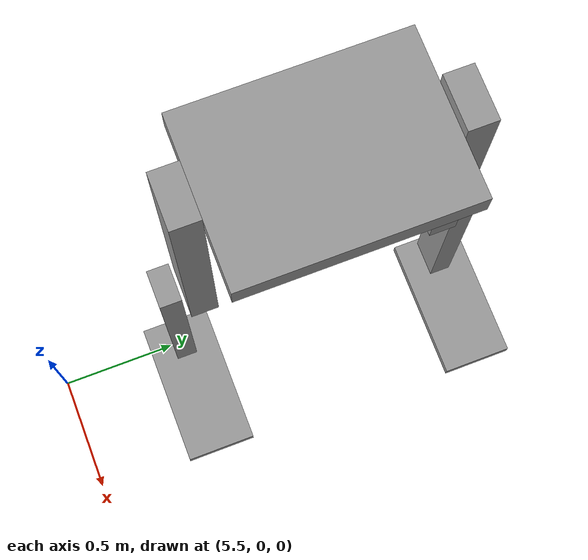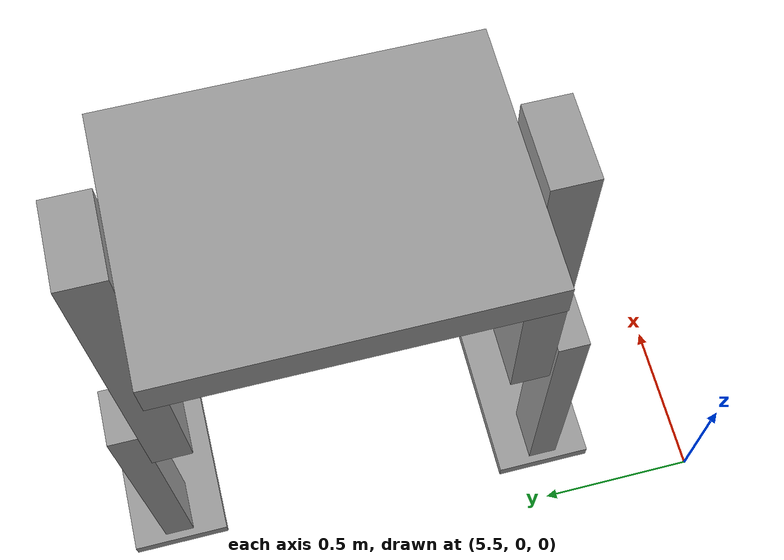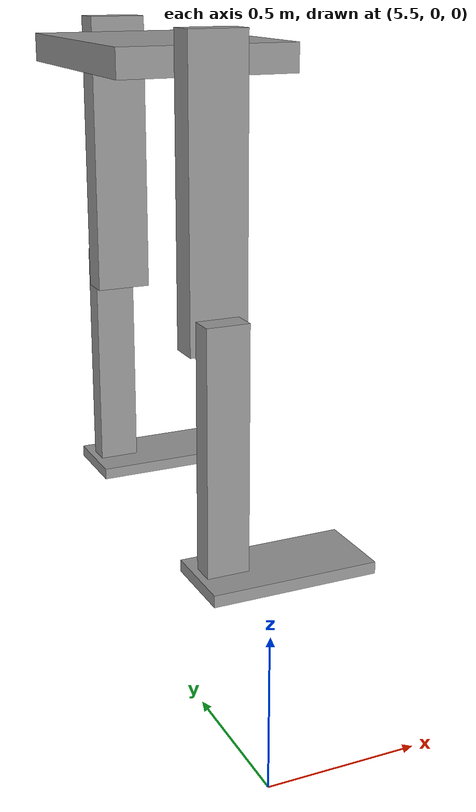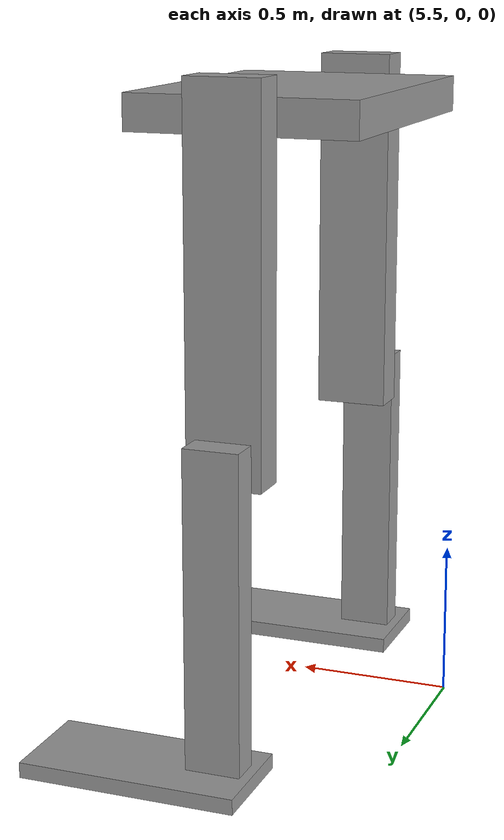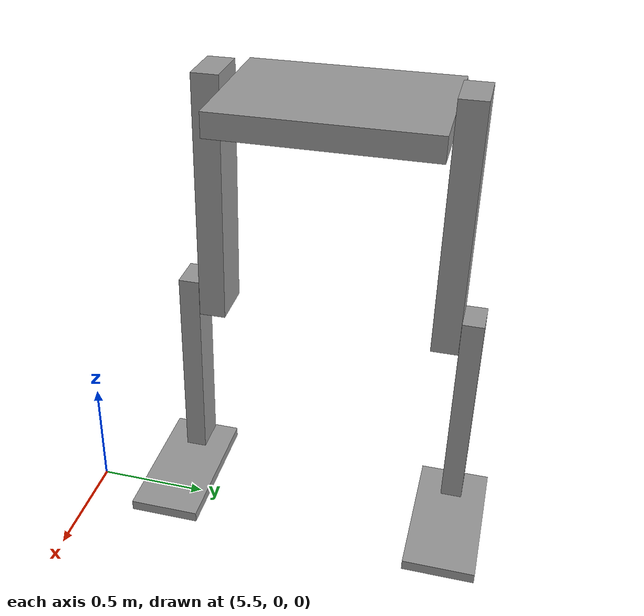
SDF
<?xml version='1.0'?>
<sdf version='1.6'>
  <model name='HumanoidRobot'>
    <link name='link_0'>
      <pose frame=''>5.63291 1.13301 2.06171 0 -0 0</pose>
      <inertial>
        <mass>0.0479159</mass>
        <inertia>
          <ixx>0.00277622</ixx>
          <ixy>0</ixy>
          <ixz>0</ixz>
          <iyy>0.00151083</iyy>
          <iyz>0</iyz>
          <izz>0.00421471</izz>
        </inertia>
        <pose frame=''>0 0 0 0 -0 0</pose>
      </inertial>
      <visual name='visual'>
        <pose frame=''>0 0 0 0 -0 0</pose>
        <geometry>
          <box>
            <size>0.60771 0.828381 0.095171</size>
          </box>
        </geometry>
        <material>
          <lighting>1</lighting>
          <script>
            <uri>file://media/materials/scripts/gazebo.material</uri>
            <name>Gazebo/Grey</name>
          </script>
          <shader type='pixel'/>
          <ambient>0.3 0.3 0.3 1</ambient>
          <diffuse>0.7 0.7 0.7 1</diffuse>
          <specular>0.01 0.01 0.01 1</specular>
          <emissive>0 0 0 1</emissive>
        </material>
        <transparency>0</transparency>
        <cast_shadows>1</cast_shadows>
      </visual>
      <collision name='collision'>
        <laser_retro>0</laser_retro>
        <max_contacts>10</max_contacts>
        <pose frame=''>0 0 0 0 -0 0</pose>
        <geometry>
          <box>
            <size>0.60771 0.828381 0.095171</size>
          </box>
        </geometry>
        <surface>
          <friction>
            <ode>
              <mu>1</mu>
              <mu2>1</mu2>
              <fdir1>0 0 0</fdir1>
              <slip1>0</slip1>
              <slip2>0</slip2>
            </ode>
            <torsional>
              <coefficient>1</coefficient>
              <patch_radius>0</patch_radius>
              <surface_radius>0</surface_radius>
              <use_patch_radius>1</use_patch_radius>
              <ode>
                <slip>0</slip>
              </ode>
            </torsional>
          </friction>
          <bounce>
            <restitution_coefficient>0</restitution_coefficient>
            <threshold>1e+06</threshold>
          </bounce>
          <contact>
            <collide_without_contact>0</collide_without_contact>
            <collide_without_contact_bitmask>1</collide_without_contact_bitmask>
            <collide_bitmask>1</collide_bitmask>
            <ode>
              <soft_cfm>0</soft_cfm>
              <soft_erp>0.2</soft_erp>
              <kp>1e+13</kp>
              <kd>1</kd>
              <max_vel>0.01</max_vel>
              <min_depth>0</min_depth>
            </ode>
            <bullet>
              <split_impulse>1</split_impulse>
              <split_impulse_penetration_threshold>-0.01</split_impulse_penetration_threshold>
              <soft_cfm>0</soft_cfm>
              <soft_erp>0.2</soft_erp>
              <kp>1e+13</kp>
              <kd>1</kd>
            </bullet>
          </contact>
        </surface>
      </collision>
    </link>
    <link name='link_1'>
      <pose frame=''>5.61249 0.663008 1.66171 0 -0 0</pose>
      <inertial>
        <mass>0.0209671</mass>
        <inertia>
          <ixx>0.00176679</ixx>
          <ixy>0</ixy>
          <ixz>0</ixz>
          <iyy>0.00181598</iyy>
          <iyz>0</iyz>
          <izz>8.82536e-05</izz>
        </inertia>
        <pose frame=''>0 0 0 0 -0 0</pose>
      </inertial>
      <visual name='visual'>
        <pose frame=''>0 0 0 0 -0 0</pose>
        <geometry>
          <box>
            <size>0.198326 0.105721 1</size>
          </box>
        </geometry>
        <material>
          <lighting>1</lighting>
          <script>
            <uri>file://media/materials/scripts/gazebo.material</uri>
            <name>Gazebo/Grey</name>
          </script>
          <shader type='pixel'/>
          <ambient>0.3 0.3 0.3 1</ambient>
          <diffuse>0.7 0.7 0.7 1</diffuse>
          <specular>0.01 0.01 0.01 1</specular>
          <emissive>0 0 0 1</emissive>
        </material>
        <transparency>0</transparency>
        <cast_shadows>1</cast_shadows>
      </visual>
      <collision name='collision'>
        <laser_retro>0</laser_retro>
        <max_contacts>10</max_contacts>
        <pose frame=''>0 0 0 0 -0 0</pose>
        <geometry>
          <box>
            <size>0.198326 0.105721 1</size>
          </box>
        </geometry>
        <surface>
          <friction>
            <ode>
              <mu>1</mu>
              <mu2>1</mu2>
              <fdir1>0 0 0</fdir1>
              <slip1>0</slip1>
              <slip2>0</slip2>
            </ode>
            <torsional>
              <coefficient>1</coefficient>
              <patch_radius>0</patch_radius>
              <surface_radius>0</surface_radius>
              <use_patch_radius>1</use_patch_radius>
              <ode>
                <slip>0</slip>
              </ode>
            </torsional>
          </friction>
          <bounce>
            <restitution_coefficient>0</restitution_coefficient>
            <threshold>1e+06</threshold>
          </bounce>
          <contact>
            <collide_without_contact>0</collide_without_contact>
            <collide_without_contact_bitmask>1</collide_without_contact_bitmask>
            <collide_bitmask>1</collide_bitmask>
            <ode>
              <soft_cfm>0</soft_cfm>
              <soft_erp>0.2</soft_erp>
              <kp>1e+13</kp>
              <kd>1</kd>
              <max_vel>0.01</max_vel>
              <min_depth>0</min_depth>
            </ode>
            <bullet>
              <split_impulse>1</split_impulse>
              <split_impulse_penetration_threshold>-0.01</split_impulse_penetration_threshold>
              <soft_cfm>0</soft_cfm>
              <soft_erp>0.2</soft_erp>
              <kp>1e+13</kp>
              <kd>1</kd>
            </bullet>
          </contact>
        </surface>
      </collision>
    </link>
    <link name='link_1_clone'>
      <pose frame=''>5.63291 1.60006 1.66171 0 -0 0</pose>
      <inertial>
        <mass>0.0209671</mass>
        <inertia>
          <ixx>0.00176679</ixx>
          <ixy>0</ixy>
          <ixz>0</ixz>
          <iyy>0.00181598</iyy>
          <iyz>0</iyz>
          <izz>8.82536e-05</izz>
        </inertia>
        <pose frame=''>0 0 0 0 -0 0</pose>
      </inertial>
      <visual name='visual'>
        <pose frame=''>0 0 0 0 -0 0</pose>
        <geometry>
          <box>
            <size>0.198326 0.105721 1</size>
          </box>
        </geometry>
        <material>
          <lighting>1</lighting>
          <script>
            <uri>file://media/materials/scripts/gazebo.material</uri>
            <name>Gazebo/Grey</name>
          </script>
          <shader type='pixel'/>
          <ambient>0.3 0.3 0.3 1</ambient>
          <diffuse>0.7 0.7 0.7 1</diffuse>
          <specular>0.01 0.01 0.01 1</specular>
          <emissive>0 0 0 1</emissive>
        </material>
        <transparency>0</transparency>
        <cast_shadows>1</cast_shadows>
      </visual>
      <collision name='collision'>
        <laser_retro>0</laser_retro>
        <max_contacts>10</max_contacts>
        <pose frame=''>0 0 0 0 -0 0</pose>
        <geometry>
          <box>
            <size>0.198326 0.105721 1</size>
          </box>
        </geometry>
        <surface>
          <friction>
            <ode>
              <mu>1</mu>
              <mu2>1</mu2>
              <fdir1>0 0 0</fdir1>
              <slip1>0</slip1>
              <slip2>0</slip2>
            </ode>
            <torsional>
              <coefficient>1</coefficient>
              <patch_radius>0</patch_radius>
              <surface_radius>0</surface_radius>
              <use_patch_radius>1</use_patch_radius>
              <ode>
                <slip>0</slip>
              </ode>
            </torsional>
          </friction>
          <bounce>
            <restitution_coefficient>0</restitution_coefficient>
            <threshold>1e+06</threshold>
          </bounce>
          <contact>
            <collide_without_contact>0</collide_without_contact>
            <collide_without_contact_bitmask>1</collide_without_contact_bitmask>
            <collide_bitmask>1</collide_bitmask>
            <ode>
              <soft_cfm>0</soft_cfm>
              <soft_erp>0.2</soft_erp>
              <kp>1e+13</kp>
              <kd>1</kd>
              <max_vel>0.01</max_vel>
              <min_depth>0</min_depth>
            </ode>
            <bullet>
              <split_impulse>1</split_impulse>
              <split_impulse_penetration_threshold>-0.01</split_impulse_penetration_threshold>
              <soft_cfm>0</soft_cfm>
              <soft_erp>0.2</soft_erp>
              <kp>1e+13</kp>
              <kd>1</kd>
            </bullet>
          </contact>
        </surface>
      </collision>
    </link>
    <link name='link_2'>
      <pose frame=''>5.59972 0.553008 0.86171 0 -0 0</pose>
      <inertial>
        <mass>0.0105192</mass>
        <inertia>
          <ixx>0.000629299</ixx>
          <ixy>0</ixy>
          <ixz>0</ixz>
          <iyy>0.000642004</iyy>
          <iyz>0</iyz>
          <izz>2.53023e-05</izz>
        </inertia>
        <pose frame=''>0 0 0 0 -0 0</pose>
      </inertial>
      <visual name='visual'>
        <pose frame=''>0 0 0 0 -0 0</pose>
        <geometry>
          <box>
            <size>0.147239 0.084764 0.843031</size>
          </box>
        </geometry>
        <material>
          <lighting>1</lighting>
          <script>
            <uri>file://media/materials/scripts/gazebo.material</uri>
            <name>Gazebo/Grey</name>
          </script>
          <shader type='pixel'/>
          <ambient>0.3 0.3 0.3 1</ambient>
          <diffuse>0.7 0.7 0.7 1</diffuse>
          <specular>0.01 0.01 0.01 1</specular>
          <emissive>0 0 0 1</emissive>
        </material>
        <transparency>0</transparency>
        <cast_shadows>1</cast_shadows>
      </visual>
      <collision name='collision'>
        <laser_retro>0</laser_retro>
        <max_contacts>10</max_contacts>
        <pose frame=''>0 0 0 0 -0 0</pose>
        <geometry>
          <box>
            <size>0.147239 0.084764 0.843031</size>
          </box>
        </geometry>
        <surface>
          <friction>
            <ode>
              <mu>1</mu>
              <mu2>1</mu2>
              <fdir1>0 0 0</fdir1>
              <slip1>0</slip1>
              <slip2>0</slip2>
            </ode>
            <torsional>
              <coefficient>1</coefficient>
              <patch_radius>0</patch_radius>
              <surface_radius>0</surface_radius>
              <use_patch_radius>1</use_patch_radius>
              <ode>
                <slip>0</slip>
              </ode>
            </torsional>
          </friction>
          <bounce>
            <restitution_coefficient>0</restitution_coefficient>
            <threshold>1e+06</threshold>
          </bounce>
          <contact>
            <collide_without_contact>0</collide_without_contact>
            <collide_without_contact_bitmask>1</collide_without_contact_bitmask>
            <collide_bitmask>1</collide_bitmask>
            <ode>
              <soft_cfm>0</soft_cfm>
              <soft_erp>0.2</soft_erp>
              <kp>1e+13</kp>
              <kd>1</kd>
              <max_vel>0.01</max_vel>
              <min_depth>0</min_depth>
            </ode>
            <bullet>
              <split_impulse>1</split_impulse>
              <split_impulse_penetration_threshold>-0.01</split_impulse_penetration_threshold>
              <soft_cfm>0</soft_cfm>
              <soft_erp>0.2</soft_erp>
              <kp>1e+13</kp>
              <kd>1</kd>
            </bullet>
          </contact>
        </surface>
      </collision>
    </link>
    <link name='link_2_clone'>
      <pose frame=''>5.63291 1.6953 0.86171 0 -0 0</pose>
      <inertial>
        <mass>0.0105192</mass>
        <inertia>
          <ixx>0.000629299</ixx>
          <ixy>0</ixy>
          <ixz>0</ixz>
          <iyy>0.000642004</iyy>
          <iyz>0</iyz>
          <izz>2.53023e-05</izz>
        </inertia>
        <pose frame=''>0 0 0 0 -0 0</pose>
      </inertial>
      <visual name='visual'>
        <pose frame=''>0 0 0 0 -0 0</pose>
        <geometry>
          <box>
            <size>0.147239 0.084764 0.843031</size>
          </box>
        </geometry>
        <material>
          <lighting>1</lighting>
          <script>
            <uri>file://media/materials/scripts/gazebo.material</uri>
            <name>Gazebo/Grey</name>
          </script>
          <shader type='pixel'/>
          <ambient>0.3 0.3 0.3 1</ambient>
          <diffuse>0.7 0.7 0.7 1</diffuse>
          <specular>0.01 0.01 0.01 1</specular>
          <emissive>0 0 0 1</emissive>
        </material>
        <transparency>0</transparency>
        <cast_shadows>1</cast_shadows>
      </visual>
      <collision name='collision'>
        <laser_retro>0</laser_retro>
        <max_contacts>10</max_contacts>
        <pose frame=''>0 0 0 0 -0 0</pose>
        <geometry>
          <box>
            <size>0.147239 0.084764 0.843031</size>
          </box>
        </geometry>
        <surface>
          <friction>
            <ode>
              <mu>1</mu>
              <mu2>1</mu2>
              <fdir1>0 0 0</fdir1>
              <slip1>0</slip1>
              <slip2>0</slip2>
            </ode>
            <torsional>
              <coefficient>1</coefficient>
              <patch_radius>0</patch_radius>
              <surface_radius>0</surface_radius>
              <use_patch_radius>1</use_patch_radius>
              <ode>
                <slip>0</slip>
              </ode>
            </torsional>
          </friction>
          <bounce>
            <restitution_coefficient>0</restitution_coefficient>
            <threshold>1e+06</threshold>
          </bounce>
          <contact>
            <collide_without_contact>0</collide_without_contact>
            <collide_without_contact_bitmask>1</collide_without_contact_bitmask>
            <collide_bitmask>1</collide_bitmask>
            <ode>
              <soft_cfm>0</soft_cfm>
              <soft_erp>0.2</soft_erp>
              <kp>1e+13</kp>
              <kd>1</kd>
              <max_vel>0.01</max_vel>
              <min_depth>0</min_depth>
            </ode>
            <bullet>
              <split_impulse>1</split_impulse>
              <split_impulse_penetration_threshold>-0.01</split_impulse_penetration_threshold>
              <soft_cfm>0</soft_cfm>
              <soft_erp>0.2</soft_erp>
              <kp>1e+13</kp>
              <kd>1</kd>
            </bullet>
          </contact>
        </surface>
      </collision>
    </link>
    <link name='link_3'>
      <pose frame=''>5.79972 0.553008 0.410978 0 -0 0</pose>
      <inertial>
        <mass>0.00683639</mass>
        <inertia>
          <ixx>4.581e-05</ixx>
          <ixy>0</ixy>
          <ixz>0</ixz>
          <iyy>0.00019712</iyy>
          <iyz>0</iyz>
          <izz>0.00024096</izz>
        </inertia>
        <pose frame=''>0 0 0 0 -0 0</pose>
      </inertial>
      <gravity>1</gravity>
      <self_collide>0</self_collide>
      <kinematic>0</kinematic>
      <visual name='visual'>
        <pose frame=''>0 0 0 0 -0 0</pose>
        <geometry>
          <box>
            <size>0.586759 0.280496 0.041566</size>
          </box>
        </geometry>
        <material>
          <lighting>1</lighting>
          <script>
            <uri>file://media/materials/scripts/gazebo.material</uri>
            <name>Gazebo/Grey</name>
          </script>
          <shader type='pixel'>
            <normal_map>__default__</normal_map>
          </shader>
          <ambient>0.3 0.3 0.3 1</ambient>
          <diffuse>0.7 0.7 0.7 1</diffuse>
          <specular>0.01 0.01 0.01 1</specular>
          <emissive>0 0 0 1</emissive>
        </material>
        <transparency>0</transparency>
        <cast_shadows>1</cast_shadows>
      </visual>
      <collision name='collision'>
        <laser_retro>0</laser_retro>
        <max_contacts>10</max_contacts>
        <pose frame=''>0 0 0 0 -0 0</pose>
        <geometry>
          <box>
            <size>0.586759 0.280496 0.041566</size>
          </box>
        </geometry>
        <surface>
          <friction>
            <ode>
              <mu>1</mu>
              <mu2>1</mu2>
              <fdir1>0 0 0</fdir1>
              <slip1>0</slip1>
              <slip2>0</slip2>
            </ode>
            <torsional>
              <coefficient>1</coefficient>
              <patch_radius>0</patch_radius>
              <surface_radius>0</surface_radius>
              <use_patch_radius>1</use_patch_radius>
              <ode>
                <slip>0</slip>
              </ode>
            </torsional>
          </friction>
          <bounce>
            <restitution_coefficient>0</restitution_coefficient>
            <threshold>1e+06</threshold>
          </bounce>
          <contact>
            <collide_without_contact>0</collide_without_contact>
            <collide_without_contact_bitmask>1</collide_without_contact_bitmask>
            <collide_bitmask>1</collide_bitmask>
            <ode>
              <soft_cfm>0</soft_cfm>
              <soft_erp>0.2</soft_erp>
              <kp>1e+13</kp>
              <kd>1</kd>
              <max_vel>0.01</max_vel>
              <min_depth>0</min_depth>
            </ode>
            <bullet>
              <split_impulse>1</split_impulse>
              <split_impulse_penetration_threshold>-0.01</split_impulse_penetration_threshold>
              <soft_cfm>0</soft_cfm>
              <soft_erp>0.2</soft_erp>
              <kp>1e+13</kp>
              <kd>1</kd>
            </bullet>
          </contact>
        </surface>
      </collision>
    </link>
    <link name='link_3_clone'>
      <pose frame=''>5.83291 1.6953 0.410978 0 -0 0</pose>
      <inertial>
        <mass>0.00683639</mass>
        <inertia>
          <ixx>4.581e-05</ixx>
          <ixy>0</ixy>
          <ixz>0</ixz>
          <iyy>0.00019712</iyy>
          <iyz>0</iyz>
          <izz>0.00024096</izz>
        </inertia>
        <pose frame=''>0 0 0 0 -0 0</pose>
      </inertial>
      <gravity>1</gravity>
      <self_collide>0</self_collide>
      <kinematic>0</kinematic>
      <visual name='visual'>
        <pose frame=''>0 0 0 0 -0 0</pose>
        <geometry>
          <box>
            <size>0.586759 0.280496 0.041566</size>
          </box>
        </geometry>
        <material>
          <lighting>1</lighting>
          <script>
            <uri>file://media/materials/scripts/gazebo.material</uri>
            <name>Gazebo/Grey</name>
          </script>
          <shader type='pixel'>
            <normal_map>__default__</normal_map>
          </shader>
          <ambient>0.3 0.3 0.3 1</ambient>
          <diffuse>0.7 0.7 0.7 1</diffuse>
          <specular>0.01 0.01 0.01 1</specular>
          <emissive>0 0 0 1</emissive>
        </material>
        <transparency>0</transparency>
        <cast_shadows>1</cast_shadows>
      </visual>
      <collision name='collision'>
        <laser_retro>0</laser_retro>
        <max_contacts>10</max_contacts>
        <pose frame=''>0 0 0 0 -0 0</pose>
        <geometry>
          <box>
            <size>0.586759 0.280496 0.041566</size>
          </box>
        </geometry>
        <surface>
          <friction>
            <ode>
              <mu>1</mu>
              <mu2>1</mu2>
              <fdir1>0 0 0</fdir1>
              <slip1>0</slip1>
              <slip2>0</slip2>
            </ode>
            <torsional>
              <coefficient>1</coefficient>
              <patch_radius>0</patch_radius>
              <surface_radius>0</surface_radius>
              <use_patch_radius>1</use_patch_radius>
              <ode>
                <slip>0</slip>
              </ode>
            </torsional>
          </friction>
          <bounce>
            <restitution_coefficient>0</restitution_coefficient>
            <threshold>1e+06</threshold>
          </bounce>
          <contact>
            <collide_without_contact>0</collide_without_contact>
            <collide_without_contact_bitmask>1</collide_without_contact_bitmask>
            <collide_bitmask>1</collide_bitmask>
            <ode>
              <soft_cfm>0</soft_cfm>
              <soft_erp>0.2</soft_erp>
              <kp>1e+13</kp>
              <kd>1</kd>
              <max_vel>0.01</max_vel>
              <min_depth>0</min_depth>
            </ode>
            <bullet>
              <split_impulse>1</split_impulse>
              <split_impulse_penetration_threshold>-0.01</split_impulse_penetration_threshold>
              <soft_cfm>0</soft_cfm>
              <soft_erp>0.2</soft_erp>
              <kp>1e+13</kp>
              <kd>1</kd>
            </bullet>
          </contact>
        </surface>
      </collision>
    </link>
    <joint name='link_0_JOINT_0' type='revolute'>
      <parent>link_0</parent>
      <child>link_1</child>
      <pose frame=''>0 0 0.4 0 -0 0</pose>
      <axis>
        <xyz>0 1 0</xyz>
        <use_parent_model_frame>0</use_parent_model_frame>
        <limit>
          <lower>-1.79769e+308</lower>
          <upper>1.79769e+308</upper>
          <effort>-1</effort>
          <velocity>-1</velocity>
        </limit>
        <dynamics>
          <spring_reference>0</spring_reference>
          <spring_stiffness>0</spring_stiffness>
          <damping>0</damping>
          <friction>0</friction>
        </dynamics>
      </axis>
      <physics>
        <ode>
          <limit>
            <cfm>0</cfm>
            <erp>0.2</erp>
          </limit>
          <suspension>
            <cfm>0</cfm>
            <erp>0.2</erp>
          </suspension>
        </ode>
      </physics>
    </joint>
    <joint name='link_0_JOINT_1' type='revolute'>
      <parent>link_0</parent>
      <child>link_1_clone</child>
      <pose frame=''>0 0 0.4 0 -0 0</pose>
      <axis>
        <xyz>0 1 0</xyz>
        <use_parent_model_frame>0</use_parent_model_frame>
        <limit>
          <lower>-1.79769e+308</lower>
          <upper>1.79769e+308</upper>
          <effort>-1</effort>
          <velocity>-1</velocity>
        </limit>
        <dynamics>
          <spring_reference>0</spring_reference>
          <spring_stiffness>0</spring_stiffness>
          <damping>0</damping>
          <friction>0</friction>
        </dynamics>
      </axis>
      <physics>
        <ode>
          <limit>
            <cfm>0</cfm>
            <erp>0.2</erp>
          </limit>
          <suspension>
            <cfm>0</cfm>
            <erp>0.2</erp>
          </suspension>
        </ode>
      </physics>
    </joint>
    <joint name='link_1_JOINT_2' type='revolute'>
      <parent>link_1</parent>
      <child>link_2</child>
      <pose frame=''>0 0 0.35 0 -0 0</pose>
      <axis>
        <xyz>0 1 0</xyz>
        <use_parent_model_frame>0</use_parent_model_frame>
        <limit>
          <lower>-1.79769e+308</lower>
          <upper>1.79769e+308</upper>
          <effort>-1</effort>
          <velocity>-1</velocity>
        </limit>
        <dynamics>
          <spring_reference>0</spring_reference>
          <spring_stiffness>0</spring_stiffness>
          <damping>0</damping>
          <friction>0</friction>
        </dynamics>
      </axis>
      <physics>
        <ode>
          <limit>
            <cfm>0</cfm>
            <erp>0.2</erp>
          </limit>
          <suspension>
            <cfm>0</cfm>
            <erp>0.2</erp>
          </suspension>
        </ode>
      </physics>
    </joint>
    <joint name='link_1_clone_JOINT_3' type='revolute'>
      <parent>link_1_clone</parent>
      <child>link_2_clone</child>
      <pose frame=''>0 0 0.35 0 -0 0</pose>
      <axis>
        <xyz>0 1 0</xyz>
        <use_parent_model_frame>0</use_parent_model_frame>
        <limit>
          <lower>-1.79769e+308</lower>
          <upper>1.79769e+308</upper>
          <effort>-1</effort>
          <velocity>-1</velocity>
        </limit>
        <dynamics>
          <spring_reference>0</spring_reference>
          <spring_stiffness>0</spring_stiffness>
          <damping>0</damping>
          <friction>0</friction>
        </dynamics>
      </axis>
      <physics>
        <ode>
          <limit>
            <cfm>0</cfm>
            <erp>0.2</erp>
          </limit>
          <suspension>
            <cfm>0</cfm>
            <erp>0.2</erp>
          </suspension>
        </ode>
      </physics>
    </joint>
    <joint name='link_2_JOINT_4' type='fixed'>
      <parent>link_2</parent>
      <child>link_3</child>
      <pose frame=''>0 0 0 0 -0 0</pose>
      <physics>
        <ode>
          <limit>
            <cfm>0</cfm>
            <erp>0.2</erp>
          </limit>
          <suspension>
            <cfm>0</cfm>
            <erp>0.2</erp>
          </suspension>
        </ode>
      </physics>
    </joint>
    <joint name='link_2_clone_JOINT_5' type='revolute'>
      <parent>link_2_clone</parent>
      <child>link_3_clone</child>
      <pose frame=''>-0.2 0 0 0 -0 0</pose>
      <axis>
        <xyz>1 0 0</xyz>
        <use_parent_model_frame>0</use_parent_model_frame>
        <limit>
          <lower>-1.79769e+308</lower>
          <upper>1.79769e+308</upper>
          <effort>-1</effort>
          <velocity>-1</velocity>
        </limit>
        <dynamics>
          <spring_reference>0</spring_reference>
          <spring_stiffness>0</spring_stiffness>
          <damping>0</damping>
        </dynamics>
      </axis>
      <physics>
        <ode>
          <limit>
            <cfm>0</cfm>
            <erp>0.2</erp>
          </limit>
          <suspension>
            <cfm>0</cfm>
            <erp>0.2</erp>
          </suspension>
        </ode>
      </physics>
    </joint>
    <static>0</static>
    <allow_auto_disable>1</allow_auto_disable>
  </model>
</sdf>
